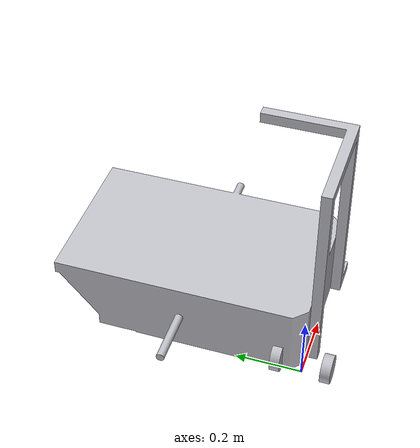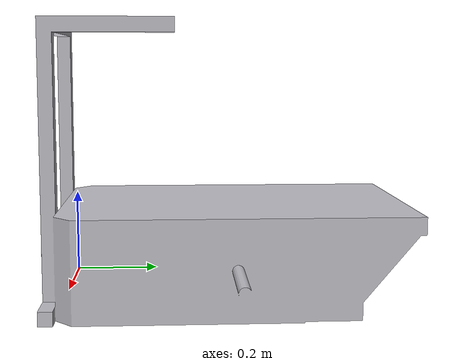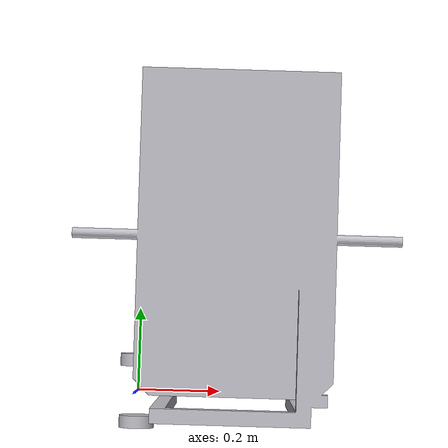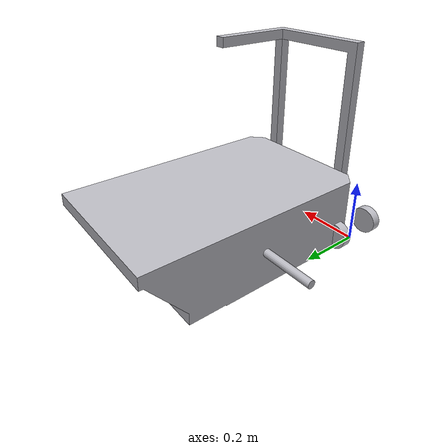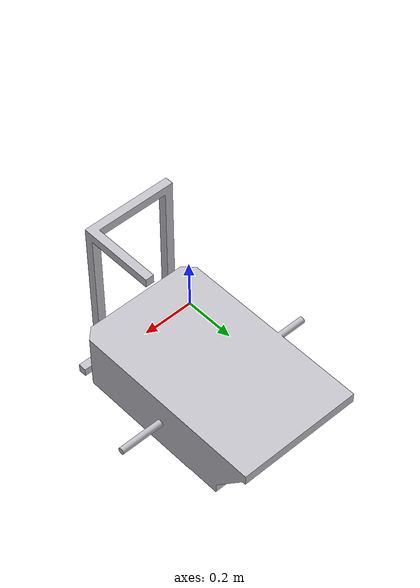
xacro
<?xml version="1.0" ?>
<robot name="Basic_Robot" xmlns:xacro="http://www.ros.org/wiki/xacro">

<xacro:include filename="$(find rover_description)/urdf/materials.xacro" />
<xacro:include filename="$(find rover_description)/urdf/Basic_Robot.trans" />
<xacro:include filename="$(find rover_description)/urdf/Basic_Robot.gazebo" />
<link name="base_link">
  <inertial>
    <origin rpy="0 0 0" xyz="0.047517484701943946 0.004858805619815502 -0.0300059480762529"/>
    <mass value="0.4424914005445932"/>
    <inertia ixx="0.000128" ixy="2e-06" ixz="-0.0" iyy="0.00046" iyz="0.0" izz="0.000341"/>
  </inertial>
  <visual>
    <origin rpy="0 0 0" xyz="0 0 0"/>
    <geometry>
      <mesh filename="package://rover_description/meshes/base_link.stl" scale="0.001 0.001 0.001"/>
    </geometry>
    <material name="silver"/>
  </visual>
  <collision>
    <origin rpy="0 0 0" xyz="0 0 0"/>
    <geometry>
      <mesh filename="package://rover_description/meshes/base_link.stl" scale="0.001 0.001 0.001"/>
    </geometry>
  </collision>
</link>

<link name="right_wheel_1">
  <inertial>
    <origin rpy="0 0 0" xyz="0.005000000000000007 4.336808689942018e-18 -0.001427613941018771"/>
    <mass value="0.015522874373267303"/>
    <inertia ixx="1e-06" ixy="0.0" ixz="-0.0" iyy="1e-06" iyz="0.0" izz="2e-06"/>
  </inertial>
  <visual>
    <origin rpy="0 0 0" xyz="-0.0 -0.005 0.06"/>
    <geometry>
      <mesh filename="package://rover_description/meshes/right_wheel_1.stl" scale="0.001 0.001 0.001"/>
    </geometry>
    <material name="silver"/>
  </visual>
  <collision>
    <origin rpy="0 0 0" xyz="-0.0 -0.005 0.06"/>
    <geometry>
      <mesh filename="package://rover_description/meshes/right_wheel_1.stl" scale="0.001 0.001 0.001"/>
    </geometry>
  </collision>
</link>

<link name="left_wheel_1">
  <inertial>
    <origin rpy="0 0 0" xyz="0.004999999999999999 0.0 0.0014276139410187671"/>
    <mass value="0.015522874373267314"/>
    <inertia ixx="1e-06" ixy="-0.0" ixz="-0.0" iyy="1e-06" iyz="0.0" izz="2e-06"/>
  </inertial>
  <visual>
    <origin rpy="0 0 0" xyz="-0.0 -0.005 -0.0"/>
    <geometry>
      <mesh filename="package://rover_description/meshes/left_wheel_1.stl" scale="0.001 0.001 0.001"/>
    </geometry>
    <material name="silver"/>
  </visual>
  <collision>
    <origin rpy="0 0 0" xyz="-0.0 -0.005 -0.0"/>
    <geometry>
      <mesh filename="package://rover_description/meshes/left_wheel_1.stl" scale="0.001 0.001 0.001"/>
    </geometry>
  </collision>
</link>

<joint name="Rev1" type="continuous">
  <origin rpy="0 0 0" xyz="0.0 0.005 -0.06"/>
  <parent link="base_link"/>
  <child link="right_wheel_1"/>
  <axis xyz="0.0 0.0 -1.0"/>
</joint>

<joint name="Rev2" type="continuous">
  <origin rpy="0 0 0" xyz="0.0 0.005 0.0"/>
  <parent link="base_link"/>
  <child link="left_wheel_1"/>
  <axis xyz="0.0 0.0 1.0"/>
</joint>

</robot>

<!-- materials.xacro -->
<robot name="materials"
  xmlns:xacro="http://ros.org/wiki/xacro">
  <material name="black">
    <color rgba="0.1 0.1 0.1 1.0" />
  </material>

  <material name="blue">
    <color rgba="0.0 0.0 0.8 1.0" />
  </material>

  <material name="green">
    <color rgba="0.4 0.9 0.4 1.0" />
  </material>

  <material name="gray">
    <color rgba="0.7 0.7 0.7 1.0" />
  </material>

  <material name="darkgray">
    <color rgba="0.3 0.3 0.3 1.0" />
  </material>

  <material name="red">
    <color rgba="0.8 0.0 0.0 1.0" />
  </material>

  <material name="white">
    <color rgba="1.0 1.0 1.0 1.0" />
  </material>

  <material name="yellow">
    <color rgba="0.8 0.8 0.0 1.0" />
  </material>

</robot>
